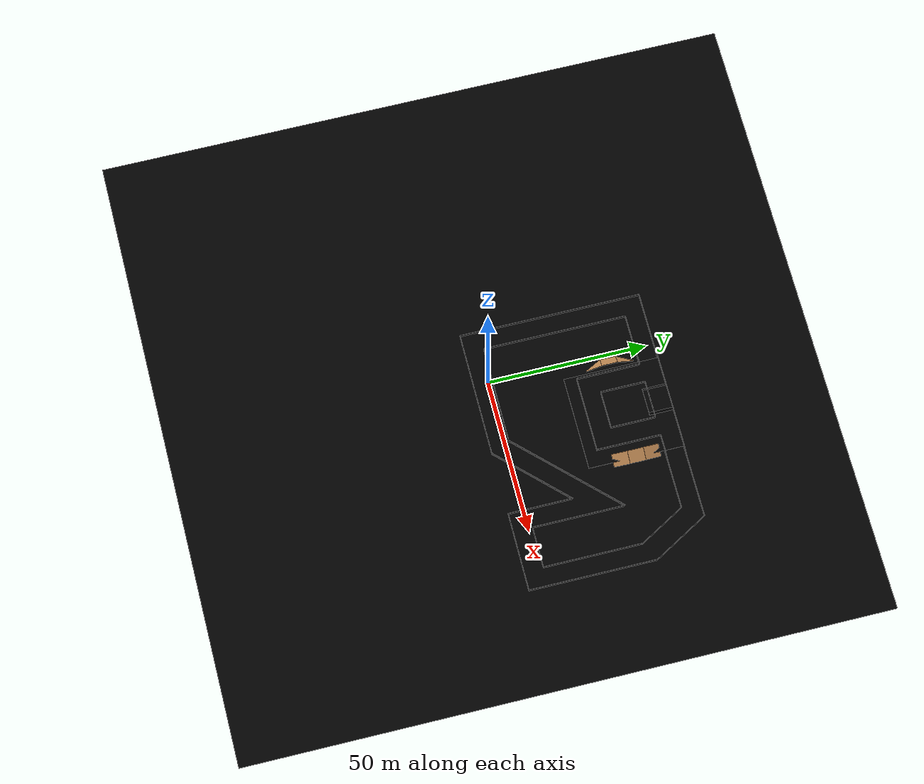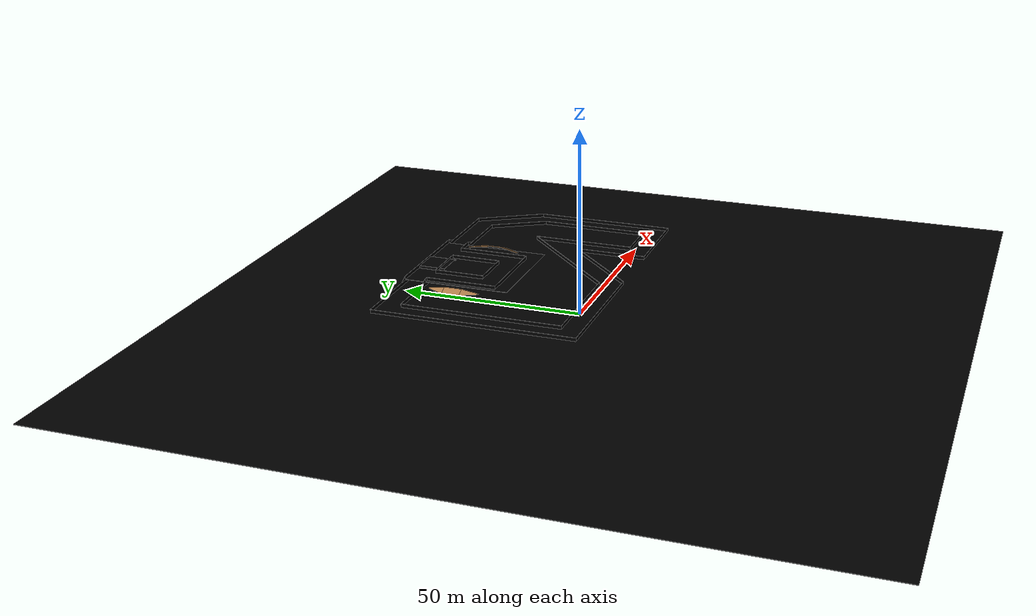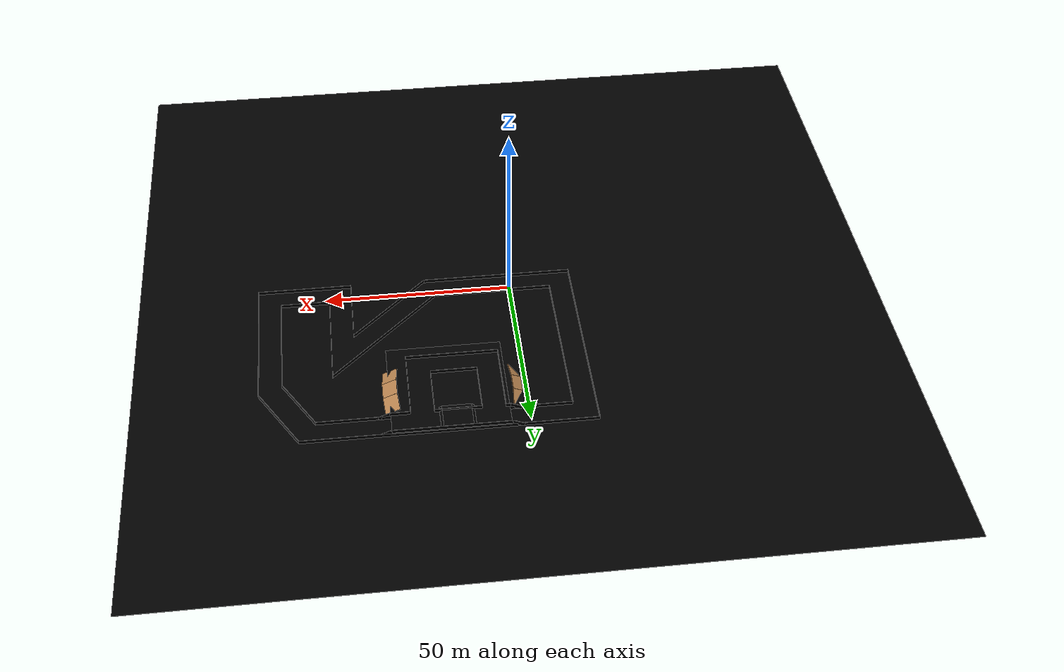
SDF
<sdf version="1.4">
 <world name="default">
  <light name="sun" type="directional">
   <pose>0 0 10 0 -0 0</pose>
   <diffuse>1.0 1.0 1.0 1</diffuse>
   <specular>0.2 0.2 0.2 1</specular>
   <attenuation>
    <range>1000</range>
    <constant>0.9</constant>
    <linear>0.01</linear>
    <quadratic>0.001</quadratic>
   </attenuation>
   <direction>-0.5 -0.5 -1.0</direction>
  </light>
  <include><uri>model://surface</uri></include>
  <include><uri>model://ramp_groundplane</uri><pose>20 37.5 1.1  0 0 0</pose></include>
  <include><uri>model://ramp_groundplane_2</uri><pose>18.34 48.55 1.573  0 0 0</pose></include>
  <include><uri>model://short_ramp</uri><pose>14.205 48.55 1.3  0 -0.6 0</pose></include>
  <include><uri>model://short_ramp</uri><pose>22.475 48.55 1.3  0 0.6 0</pose></include>
  <include><uri>model://3m_ramp</uri><pose>3.64 37.5 0.52  0 -0.4 0</pose></include>
  <include><uri>model://3m_ramp</uri><pose>36.36 37.5 0.52  0 0.4 0</pose></include>
  <include><uri>model://outer_wall</uri></include>
  <include><uri>model://inner_wall</uri></include>
  <physics type="ode">
   <max_step_size>0.001</max_step_size>
   <real_time_factor>1</real_time_factor>
   <real_time_update_rate>1000</real_time_update_rate>
   <gravity>0 0 -9.8</gravity>
  </physics>
  <scene>
   <ambient>1 1 1 1</ambient>
   <background>1 1 1 1</background>
   <shadows>1</shadows>
   <sky><clouds><speed>12</speed></clouds></sky>
  </scene>
  <spherical_coordinates>
   <surface_model>EARTH_WGS84</surface_model>
   <latitude_deg>0</latitude_deg>
   <longitude_deg>0</longitude_deg>
   <elevation>0</elevation>
   <heading_deg>0</heading_deg>
  </spherical_coordinates>
 </world>
</sdf>

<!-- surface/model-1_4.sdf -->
<sdf version="1.4">
  <model name="black_ice_lower_friction">
    <static>true</static>
    <link name="link">
      <collision name="collision">
        <geometry>
          <box>
            <size>200 200 0.1</size>
          </box>
        </geometry>
        <surface>
          <friction>
            <ode>
              <mu>1</mu>
              <mu2>1</mu2>
            </ode>
          </friction>
        </surface>
      </collision>
      <visual name="visual_1">
        <pose>0 0 0 0 0 0</pose>
        <cast_shadows>false</cast_shadows>
        <geometry>
          <box>
            <size>200 200 0.1</size>
          </box>
        </geometry>
        <material>
          <ambient>109 112 113 1</ambient>
          <diffuse>0 0 0 1</diffuse>
          <specular>0 0 0 0</specular>
          <emissive>0 0 0 1</emissive>
        </material>
      </visual>
    </link>
  </model>
</sdf>

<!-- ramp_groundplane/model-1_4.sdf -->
<sdf version="1.4">
  <model name="ramp_groundplane">
    <static>true</static>
    <link name="link">
      <collision name="collision">
        <geometry>
          <box>
            <size>30 30 0.1</size>
          </box>
        </geometry>
        <surface>
          <friction>
            <ode>
              <mu>1</mu>
              <mu2>1</mu2>
            </ode>
          </friction>
        </surface>
      </collision>
      <visual name="visual_1">
        <pose>0 0 0 0 0 0</pose>
        <cast_shadows>false</cast_shadows>
        <geometry>
          <box>
            <size>30 30 0.1</size>
          </box>
        </geometry>
        <material>
          <ambient>137 179 194 1</ambient>
          <diffuse>0 0 0 1</diffuse>
          <specular>0 0 0 0</specular>
          <emissive>0 0 0 1</emissive>
        </material>
      </visual>
    </link>
  </model>
</sdf>

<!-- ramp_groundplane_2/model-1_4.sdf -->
<sdf version="1.4">
  <model name="ramp_groundplane">
    <static>true</static>
    <link name="link">
      <collision name="collision">
        <geometry>
          <box>
            <size>7.5 7.5 0.1</size>
          </box>
        </geometry>
        <surface>
          <friction>
            <ode>
              <mu>1</mu>
              <mu2>1</mu2>
            </ode>
          </friction>
        </surface>
      </collision>
      <visual name="visual_1">
        <pose>0 0 0 0 0 0</pose>
        <cast_shadows>false</cast_shadows>
        <geometry>
          <box>
            <size>7.5 7.5 0.1</size>
          </box>
        </geometry>
        <material>
          <ambient>229 237 239 1</ambient>
          <diffuse>0 0 0 1</diffuse>
          <specular>0 0 0 0</specular>
          <emissive>0 0 0 1</emissive>
        </material>
      </visual>
    </link>
  </model>
</sdf>

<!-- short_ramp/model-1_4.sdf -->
<sdf version="1.4">
  <model name="basic_ramp">
    <static>true</static>
    <link name="link">
      <collision name="collision">
        <geometry>
          <box>
            <size>1 7.5 0.1</size>
          </box>
        </geometry>
        <surface>
          <friction>
            <ode>
              <mu>1</mu>
              <mu2>1</mu2>
              <fdir1>0.000000 0.000000 0.000000</fdir1>
              <slip1>0.000000</slip1>
              <slip2>0.000000</slip2>
            </ode>
          </friction>
          <bounce>
            <restitution_coefficient>0.000000</restitution_coefficient>
            <threshold>100000.000000</threshold>
          </bounce>
          <contact>
            <ode>
              <soft_cfm>0.000000</soft_cfm>
              <soft_erp>0.200000</soft_erp>
              <kp>100000.000000</kp>
              <kd>1.000000</kd>
              <max_vel>100.000000</max_vel>
              <min_depth>0.001000</min_depth>
            </ode>
          </contact>
        </surface>
      </collision>
      <visual name="visual_1">
        <pose>0 0 0  0 0 0</pose>
        <cast_shadows>true</cast_shadows>
        <geometry>
          <box>
            <size>1 7.5 0.1</size>
          </box>
        </geometry>
        <material>
          <ambient>229 237 239 1</ambient>
          <diffuse>0 0 0 1</diffuse>
          <specular>0 0 0 0</specular>
          <emissive>0 0 0 1</emissive>
        </material>
      </visual>
    </link>
  </model>
</sdf>

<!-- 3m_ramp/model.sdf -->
<sdf version="1.4">
  <model name="basic_ramp">
    <static>true</static>
    <link name="link">
      <collision name="collision">
        <geometry>
          <box>
            <size>8 10 0.2</size>
          </box>
        </geometry>
        <surface>
          <friction>
            <ode>
              <mu>10</mu>
              <mu2>10</mu2>
            </ode>
          </friction>
        </surface>
      </collision>
      <visual name="visual_1">
        <pose>-2 4.9 0  -0.2 0 0</pose>
        <cast_shadows>false</cast_shadows>
        <geometry>
          <box>
            <size>4 5 0.2</size>
          </box>
        </geometry>
        <material>
          <script>
            <uri>file://media/materials/scripts/gazebo.material</uri>
            <name>Gazebo/Wood</name>
          </script>
        </material>
      </visual>
      <visual name="visual_2">
        <pose>-2 -4.9 0  0.2 0 0</pose>
        <cast_shadows>false</cast_shadows>
        <geometry>
          <box>
            <size>4 5 0.2</size>
          </box>
        </geometry>
        <material>
          <script>
            <uri>file://media/materials/scripts/gazebo.material</uri>
            <name>Gazebo/Wood</name>
          </script>
        </material>
      </visual>
      <visual name="visual_3">
        <pose>-2 0 0.5  0 0 0</pose>
        <cast_shadows>false</cast_shadows>
        <geometry>
          <box>
            <size>4 5 0.2</size>
          </box>
        </geometry>
        <material>
          <script>
            <uri>file://media/materials/scripts/gazebo.material</uri>
            <name>Gazebo/Wood</name>
          </script>
        </material>
      </visual>
    </link>
  </model>
</sdf>

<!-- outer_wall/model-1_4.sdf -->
<sdf version="1.4">
  <model name="inner_wall">
    <static>true</static>
    <link name="link">
      <collision name="collision">
        <geometry>
          <box>
            <size>1 0.1 3</size>
          </box>
        </geometry>
        <surface>
          <friction>
            <ode>
              <mu>1</mu>
              <mu2>1</mu2>
              <fdir1>0.000000 0.000000 0.000000</fdir1>
              <slip1>0.000000</slip1>
              <slip2>0.000000</slip2>
            </ode>
          </friction>
          <bounce>
            <restitution_coefficient>0.000000</restitution_coefficient>
            <threshold>100000.000000</threshold>
          </bounce>
          <contact>
            <ode>
              <soft_cfm>0.000000</soft_cfm>
              <soft_erp>0.200000</soft_erp>
              <kp>100000.000000</kp>
              <kd>1.000000</kd>
              <max_vel>100.000000</max_vel>
              <min_depth>0.001000</min_depth>
            </ode>
          </contact>
        </surface>
      </collision>
      <visual name="visual_1">
        <pose>-17 23.8 0  0 0 1.5708</pose>
        <cast_shadows>true</cast_shadows>
        <geometry>
          <box>
            <size>57 0.1 2</size>
          </box>
        </geometry>
        <material>
          <ambient>238 156 48 1</ambient>
          <diffuse>0 0 0 1</diffuse>
          <specular>0 0 0 0</specular>
          <emissive>0 0 0 1</emissive>
        </material>
      </visual>
      <visual name="visual_2">
        <pose>3 -4.7 0  0 0 0</pose>
        <cast_shadows>true</cast_shadows>
        <geometry>
          <box>
            <size>40 0.1 2</size>
          </box>
        </geometry>
        <material>
          <ambient>238 156 48 1</ambient>
          <diffuse>0 0 0 1</diffuse>
          <specular>0 0 0 0</specular>
          <emissive>0 0 0 1</emissive>
        </material>
      </visual>
      <visual name="visual_3">
        <pose>33.0 5.35 0  0 0 0.785398</pose>
        <cast_shadows>true</cast_shadows>
        <geometry>
          <box>
            <size>28.2843 0.1 2</size>
          </box>
        </geometry>
        <material>
          <ambient>238 156 48 1</ambient>
          <diffuse>0 0 0 1</diffuse>
          <specular>0 0 0 0</specular>
          <emissive>0 0 0 1</emissive>
        </material>
      </visual>
      <visual name="visual_4">
        <pose>43 5.325 0  0 0 1.5708</pose>
        <cast_shadows>true</cast_shadows>
        <geometry>
          <box>
            <size>20.05 0.1 2</size>
          </box>
        </geometry>
        <material>
          <ambient>238 156 48 1</ambient>
          <diffuse>0 0 0 1</diffuse>
          <specular>0 0 0 0</specular>
          <emissive>0 0 0 1</emissive>
        </material>
      </visual>
      <visual name="visual_5">
        <pose>55.5 -4.7 0  0 0 0</pose>
        <cast_shadows>true</cast_shadows>
        <geometry>
          <box>
            <size>25 0.1 2</size>
          </box>
        </geometry>
        <material>
          <ambient>238 156 48 1</ambient>
          <diffuse>0 0 0 1</diffuse>
          <specular>0 0 0 0</specular>
          <emissive>0 0 0 1</emissive>
        </material>
      </visual>
      <visual name="visual_6">
        <pose>68 15.15 0  0 0 1.5708</pose>
        <cast_shadows>true</cast_shadows>
        <geometry>
          <box>
            <size>39.7 0.1 2</size>
          </box>
        </geometry>
        <material>
          <ambient>238 156 48 1</ambient>
          <diffuse>0 0 0 1</diffuse>
          <specular>0 0 0 0</specular>
          <emissive>0 0 0 1</emissive>
        </material>
      </visual>
      <visual name="visual_7">
        <pose>63.0   43.65 0  0 0 2.094399</pose>
        <cast_shadows>true</cast_shadows>
        <geometry>
          <box>
            <size>19.9822 0.1 2</size>
          </box>
        </geometry>
        <material>
          <ambient>238 156 48 1</ambient>
          <diffuse>0 0 0 1</diffuse>
          <specular>0 0 0 0</specular>
          <emissive>0 0 0 1</emissive>
        </material>
      </visual>
      <visual name="visual_8">
        <pose>20.5 52.3 0  0 0 0</pose>
        <cast_shadows>true</cast_shadows>
        <geometry>
          <box>
            <size>75 0.1 2</size>
          </box>
        </geometry>
        <material>
          <ambient>238 156 48 1</ambient>
          <diffuse>0 0 0 1</diffuse>
          <specular>0 0 0 0</specular>
          <emissive>0 0 0 1</emissive>
        </material>
      </visual>
      <visual name="visual_13">
        <pose>20 52.3 1.6  0 0 0</pose>
        <cast_shadows>true</cast_shadows>
        <geometry>
          <box>
            <size>30.5 0.1 1</size>
          </box>
        </geometry>
        <material>
          <ambient>238 156 48 1</ambient>
          <diffuse>0 0 0 1</diffuse>
          <specular>0 0 0 0</specular>
          <emissive>0 0 0 1</emissive>
        </material>
      </visual>
      <visual name="visual_15">
        <pose>36.36 52.3 0.52  0 0.4 0</pose>
        <cast_shadows>true</cast_shadows>
        <geometry>
          <box>
            <size>3.25 0.1 2</size>
          </box>
        </geometry>
        <material>
          <ambient>238 156 48 1</ambient>
          <diffuse>0 0 0 1</diffuse>
          <specular>0 0 0 0</specular>
          <emissive>0 0 0 1</emissive>
        </material>
      </visual>
      <visual name="visual_16">
        <pose>3.64 52.3 0.52  0 -0.4 0</pose>
        <cast_shadows>true</cast_shadows>
        <geometry>
          <box>
            <size>3.25 0.1 2</size>
          </box>
        </geometry>
        <material>
          <ambient>238 156 48 1</ambient>
          <diffuse>0 0 0 1</diffuse>
          <specular>0 0 0 0</specular>
          <emissive>0 0 0 1</emissive>
        </material>
      </visual>

      <visual name="visual_9">
        <pose>12 39.3 1.6  0 0 1.5708</pose>
        <cast_shadows>true</cast_shadows>
        <geometry>
          <box>
            <size>14 0.1 1</size>
          </box>
        </geometry>
        <material>
          <ambient>238 156 48 1</ambient>
          <diffuse>0 0 0 1</diffuse>
          <specular>0 0 0 0</specular>
          <emissive>0 0 0 1</emissive>
        </material>
      </visual>
      <visual name="visual_10">
        <pose>18 32.3 1.6  0 0 0</pose>
        <cast_shadows>true</cast_shadows>
        <geometry>
          <box>
            <size>12 0.1 1</size>
          </box>
        </geometry>
        <material>
          <ambient>238 156 48 1</ambient>
          <diffuse>0 0 0 1</diffuse>
          <specular>0 0 0 0</specular>
          <emissive>0 0 0 1</emissive>
        </material>
      </visual>
      <visual name="visual_11">
        <pose>24 39.3 1.6  0 0 1.5708</pose>
        <cast_shadows>true</cast_shadows>
        <geometry>
          <box>
            <size>14 0.1 1</size>
          </box>
        </geometry>
        <material>
          <ambient>238 156 48 1</ambient>
          <diffuse>0 0 0 1</diffuse>
          <specular>0 0 0 0</specular>
          <emissive>0 0 0 1</emissive>
        </material>
      </visual>
      <visual name="visual_12">
        <pose>18 46.3 1.6  0 0 0</pose>
        <cast_shadows>true</cast_shadows>
        <geometry>
          <box>
            <size>12 0.1 1</size>
          </box>
        </geometry>
        <material>
          <ambient>238 156 48 1</ambient>
          <diffuse>0 0 0 1</diffuse>
          <specular>0 0 0 0</specular>
          <emissive>0 0 0 1</emissive>
        </material>
      </visual>

    </link>
  </model>
</sdf>

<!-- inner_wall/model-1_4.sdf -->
<sdf version="1.4">
  <model name="outer_wall">
    <static>true</static>
    <link name="link">
      <collision name="collision">
        <geometry>
          <box>
            <size>1 0.1 3</size>
          </box>
        </geometry>
        <surface>
          <friction>
            <ode>
              <mu>1</mu>
              <mu2>1</mu2>
              <fdir1>0.000000 0.000000 0.000000</fdir1>
              <slip1>0.000000</slip1>
              <slip2>0.000000</slip2>
            </ode>
          </friction>
          <bounce>
            <restitution_coefficient>0.000000</restitution_coefficient>
            <threshold>100000.000000</threshold>
          </bounce>
          <contact>
            <ode>
              <soft_cfm>0.000000</soft_cfm>
              <soft_erp>0.200000</soft_erp>
              <kp>100000.000000</kp>
              <kd>1.000000</kd>
              <max_vel>100.000000</max_vel>
              <min_depth>0.001000</min_depth>
            </ode>
          </contact>
        </surface>
      </collision>
      <visual name="visual_1">
        <pose>-11 23.8 0  0 0 1.5708</pose>
        <cast_shadows>true</cast_shadows>
        <geometry>
          <box>
            <size>45 0.1 2</size>
          </box>
        </geometry>
        <material>
          <ambient>238 156 48 1</ambient>
          <diffuse>0 0 0 1</diffuse>
          <specular>0 0 0 0</specular>
          <emissive>0 0 0 1</emissive>
        </material>
      </visual>
      <visual name="visual_2">
        <pose>4.5 1.3 0  0 0 0</pose>
        <cast_shadows>true</cast_shadows>
        <geometry>
          <box>
            <size>31 0.1 2</size>
          </box>
        </geometry>
        <material>
          <ambient>238 156 48 1</ambient>
          <diffuse>0 0 0 1</diffuse>
          <specular>0 0 0 0</specular>
          <emissive>0 0 0 1</emissive>
        </material>
      </visual>
      <visual name="visual_3">
        <pose>34.5   15.65 0  0 0 0.785398</pose>
        <cast_shadows>true</cast_shadows>
        <geometry>
          <box>
            <size>40.8006 0.1 2</size>
          </box>
        </geometry>
        <material>
          <ambient>238 156 48 1</ambient>
          <diffuse>0 0 0 1</diffuse>
          <specular>0 0 0 0</specular>
          <emissive>0 0 0 1</emissive>
        </material>
      </visual>
      <visual name="visual_4">
        <pose>49 15.65 0  0 0 1.5708</pose>
        <cast_shadows>true</cast_shadows>
        <geometry>
          <box>
            <size>28.7 0.1 2</size>
          </box>
        </geometry>
        <material>
          <ambient>238 156 48 1</ambient>
          <diffuse>0 0 0 1</diffuse>
          <specular>0 0 0 0</specular>
          <emissive>0 0 0 1</emissive>
        </material>
      </visual>
      <visual name="visual_5">
        <pose>55.4 1.3 0  0 0 0</pose>
        <cast_shadows>true</cast_shadows>
        <geometry>
          <box>
            <size>13 0.1 2</size>
          </box>
        </geometry>
        <material>
          <ambient>238 156 48 1</ambient>
          <diffuse>0 0 0 1</diffuse>
          <specular>0 0 0 0</specular>
          <emissive>0 0 0 1</emissive>
        </material>
      </visual>
      <visual name="visual_6">
        <pose>62 16.65 0  0 0 1.5708</pose>
        <cast_shadows>true</cast_shadows>
        <geometry>
          <box>
            <size>30.7 0.1 2</size>
          </box>
        </geometry>
        <material>
          <ambient>238 156 48 1</ambient>
          <diffuse>0 0 0 1</diffuse>
          <specular>0 0 0 0</specular>
          <emissive>0 0 0 1</emissive>
        </material>
      </visual>
      <visual name="visual_7">
        <pose>57.9 39.15 0  0 0 2.094399</pose>
        <cast_shadows>true</cast_shadows>
        <geometry>
          <box>
            <size>16.4842 0.1 2</size>
          </box>
        </geometry>
        <material>
          <ambient>238 156 48 1</ambient>
          <diffuse>0 0 0 1</diffuse>
          <specular>0 0 0 0</specular>
          <emissive>0 0 0 1</emissive>
        </material>
      </visual>
      <visual name="visual_8">
        <pose>21.4 46.3 0  0 0 0</pose>
        <cast_shadows>true</cast_shadows>
        <geometry>
          <box>
            <size>64.8 0.1 2</size>
          </box>
        </geometry>
        <material>
          <ambient>238 156 48 1</ambient>
          <diffuse>0 0 0 1</diffuse>
          <specular>0 0 0 0</specular>
          <emissive>0 0 0 1</emissive>
        </material>
      </visual>
      <visual name="visual_12">
        <pose>5.375 46.3 1.6  0 0 0</pose>
        <cast_shadows>true</cast_shadows>
        <geometry>
          <box>
            <size>1.25 0.1 1</size>
          </box>
        </geometry>
        <material>
          <ambient>238 156 48 1</ambient>
          <diffuse>0 0 0 1</diffuse>
          <specular>0 0 0 0</specular>
          <emissive>0 0 0 1</emissive>
        </material>
      </visual>
      <visual name="visual_13">
        <pose>32.625 46.3 1.6  0 0 0</pose>
        <cast_shadows>true</cast_shadows>
        <geometry>
          <box>
            <size>5.25 0.1 1</size>
          </box>
        </geometry>
        <material>
          <ambient>238 156 48 1</ambient>
          <diffuse>0 0 0 1</diffuse>
          <specular>0 0 0 0</specular>
          <emissive>0 0 0 1</emissive>
        </material>
      </visual>
      <visual name="visual_14">
        <pose>36.36 46.3 0.52  0 0.4 0</pose>
        <cast_shadows>true</cast_shadows>
        <geometry>
          <box>
            <size>3.25 0.1 2</size>
          </box>
        </geometry>
        <material>
          <ambient>238 156 48 1</ambient>
          <diffuse>0 0 0 1</diffuse>
          <specular>0 0 0 0</specular>
          <emissive>0 0 0 1</emissive>
        </material>
      </visual>
      <visual name="visual_15">
        <pose>3.64 46.3 0.52  0 -0.4 0</pose>
        <cast_shadows>true</cast_shadows>
        <geometry>
          <box>
            <size>3.25 0.1 2</size>
          </box>
        </geometry>
        <material>
          <ambient>238 156 48 1</ambient>
          <diffuse>0 0 0 1</diffuse>
          <specular>0 0 0 0</specular>
          <emissive>0 0 0 1</emissive>
        </material>
      </visual>

       <visual name="visual_9">
        <pose>6 36.3 1.6  0 0 1.5708</pose>
        <cast_shadows>true</cast_shadows>
        <geometry>
          <box>
            <size>20 0.1 1</size>
          </box>
        </geometry>
        <material>
          <ambient>238 156 48 1</ambient>
          <diffuse>0 0 0 1</diffuse>
          <specular>0 0 0 0</specular>
          <emissive>0 0 0 1</emissive>
        </material>
      </visual>
      <visual name="visual_10">
        <pose>18 26.3 1.6  0 0 0</pose>
        <cast_shadows>true</cast_shadows>
        <geometry>
          <box>
            <size>24 0.1 1</size>
          </box>
        </geometry>
        <material>
          <ambient>238 156 48 1</ambient>
          <diffuse>0 0 0 1</diffuse>
          <specular>0 0 0 0</specular>
          <emissive>0 0 0 1</emissive>
        </material>
      </visual>
      <visual name="visual_11">
        <pose>30 36.3 1.6  0 0 1.5708</pose>
        <cast_shadows>true</cast_shadows>
        <geometry>
          <box>
            <size>20 0.1 1</size>
          </box>
        </geometry>
        <material>
          <ambient>238 156 48 1</ambient>
          <diffuse>0 0 0 1</diffuse>
          <specular>0 0 0 0</specular>
          <emissive>0 0 0 1</emissive>
        </material>
      </visual>

    </link>
  </model>
</sdf>
